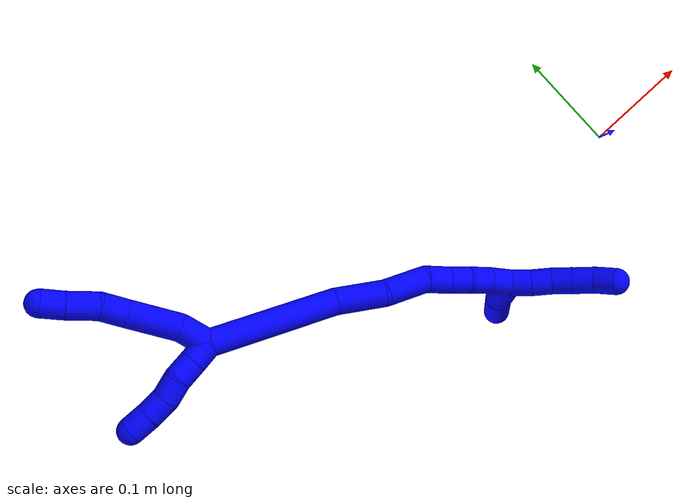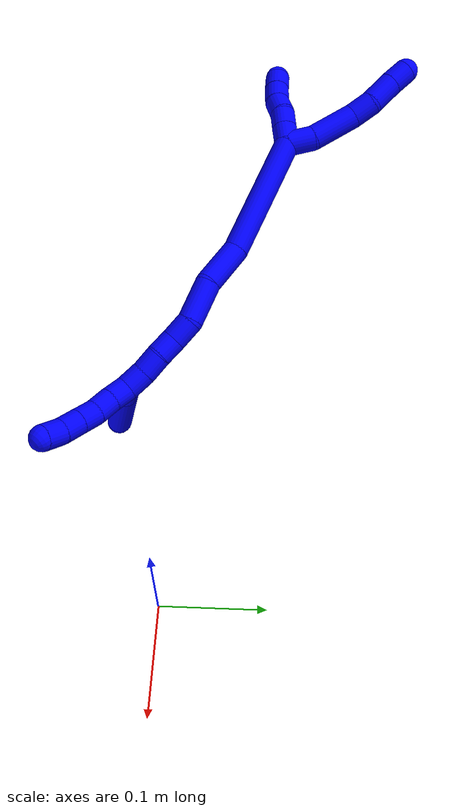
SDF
<sdf version="1.7">
 <world name="default">
  <model name="1">
   <static>0</static>
   <link name="1">
    <collision name="collision-cylinder-e_1_2_8">
     <pose>-0.008165 -0.000133 0.010962 0.012176 -0.640165 -0.004036</pose>
     <geometry><cylinder><radius>0.0125</radius><length>0.02734</length></cylinder></geometry>
     <surface>
      <friction><ode><mu>1.16</mu><mu2>1.16</mu2><slip1>0</slip1><slip2>0</slip2></ode></friction>
      <contact><ode><kp>1e+06</kp><kd>1</kd><max_vel>0</max_vel><min_depth>0.001</min_depth></ode></contact>
     </surface>
    </collision>
    <visual name="visual-cylinder-e_1_2_8">
     <pose>-0.008165 -0.000133 0.010962 0.012176 -0.640165 -0.004036</pose>
     <geometry><cylinder><radius>0.0125</radius><length>0.02734</length></cylinder></geometry>
     <material><ambient>0 0 1 1</ambient></material>
    </visual>
    <collision name="collision-cylinder-e_2_8_9">
     <pose>-0.025975 0.004066 0.043347 -0.199563 -0.415559 0.042206</pose>
     <geometry><cylinder><radius>0.0125</radius><length>0.047779</length></cylinder></geometry>
     <surface>
      <friction><ode><mu>1.16</mu><mu2>1.16</mu2><slip1>0</slip1><slip2>0</slip2></ode></friction>
      <contact><ode><kp>1e+06</kp><kd>1</kd><max_vel>0</max_vel><min_depth>0.001</min_depth></ode></contact>
     </surface>
    </collision>
    <visual name="visual-cylinder-e_2_8_9">
     <pose>-0.025975 0.004066 0.043347 -0.199563 -0.415559 0.042206</pose>
     <geometry><cylinder><radius>0.0125</radius><length>0.047779</length></cylinder></geometry>
     <material><ambient>0 0 1 1</ambient></material>
    </visual>
    <collision name="collision-cylinder-e_3_9_10">
     <pose>-0.041065 0.012587 0.074681 -0.399796 -0.468521 0.096624</pose>
     <geometry><cylinder><radius>0.0125</radius><length>0.02412</length></cylinder></geometry>
     <surface>
      <friction><ode><mu>1.16</mu><mu2>1.16</mu2><slip1>0</slip1><slip2>0</slip2></ode></friction>
      <contact><ode><kp>1e+06</kp><kd>1</kd><max_vel>0</max_vel><min_depth>0.001</min_depth></ode></contact>
     </surface>
    </collision>
    <visual name="visual-cylinder-e_3_9_10">
     <pose>-0.041065 0.012587 0.074681 -0.399796 -0.468521 0.096624</pose>
     <geometry><cylinder><radius>0.0125</radius><length>0.02412</length></cylinder></geometry>
     <material><ambient>0 0 1 1</ambient></material>
    </visual>
    <collision name="collision-cylinder-e_4_10_11">
     <pose>-0.049515 0.021856 0.098079 -0.360288 -0.205545 0.037561</pose>
     <geometry><cylinder><radius>0.0125</radius><length>0.029441</length></cylinder></geometry>
     <surface>
      <friction><ode><mu>1.16</mu><mu2>1.16</mu2><slip1>0</slip1><slip2>0</slip2></ode></friction>
      <contact><ode><kp>1e+06</kp><kd>1</kd><max_vel>0</max_vel><min_depth>0.001</min_depth></ode></contact>
     </surface>
    </collision>
    <visual name="visual-cylinder-e_4_10_11">
     <pose>-0.049515 0.021856 0.098079 -0.360288 -0.205545 0.037561</pose>
     <geometry><cylinder><radius>0.0125</radius><length>0.029441</length></cylinder></geometry>
     <material><ambient>0 0 1 1</ambient></material>
    </visual>
    <collision name="collision-cylinder-e_5_11_6">
     <pose>-0.055391 0.030282 0.12127 -0.331969 -0.272665 0.045955</pose>
     <geometry><cylinder><radius>0.0125</radius><length>0.02132</length></cylinder></geometry>
     <surface>
      <friction><ode><mu>1.16</mu><mu2>1.16</mu2><slip1>0</slip1><slip2>0</slip2></ode></friction>
      <contact><ode><kp>1e+06</kp><kd>1</kd><max_vel>0</max_vel><min_depth>0.001</min_depth></ode></contact>
     </surface>
    </collision>
    <visual name="visual-cylinder-e_5_11_6">
     <pose>-0.055391 0.030282 0.12127 -0.331969 -0.272665 0.045955</pose>
     <geometry><cylinder><radius>0.0125</radius><length>0.02132</length></cylinder></geometry>
     <material><ambient>0 0 1 1</ambient></material>
    </visual>
    <collision name="collision-cylinder-e_1_2_12">
     <pose>0.006266 0.003805 0.006801 -0.510161 0.677238 -0.183158</pose>
     <geometry><cylinder><radius>0.0125</radius><length>0.02</length></cylinder></geometry>
     <surface>
      <friction><ode><mu>1.16</mu><mu2>1.16</mu2><slip1>0</slip1><slip2>0</slip2></ode></friction>
      <contact><ode><kp>1e+06</kp><kd>1</kd><max_vel>0</max_vel><min_depth>0.001</min_depth></ode></contact>
     </surface>
    </collision>
    <visual name="visual-cylinder-e_1_2_12">
     <pose>0.006266 0.003805 0.006801 -0.510161 0.677238 -0.183158</pose>
     <geometry><cylinder><radius>0.0125</radius><length>0.02</length></cylinder></geometry>
     <material><ambient>0 0 1 1</ambient></material>
    </visual>
    <collision name="collision-cylinder-e_2_12_13">
     <pose>0.01857 0.011594 0.020508 -0.523094 0.648123 -0.179346</pose>
     <geometry><cylinder><radius>0.0125</radius><length>0.02</length></cylinder></geometry>
     <surface>
      <friction><ode><mu>1.16</mu><mu2>1.16</mu2><slip1>0</slip1><slip2>0</slip2></ode></friction>
      <contact><ode><kp>1e+06</kp><kd>1</kd><max_vel>0</max_vel><min_depth>0.001</min_depth></ode></contact>
     </surface>
    </collision>
    <visual name="visual-cylinder-e_2_12_13">
     <pose>0.01857 0.011594 0.020508 -0.523094 0.648123 -0.179346</pose>
     <geometry><cylinder><radius>0.0125</radius><length>0.02</length></cylinder></geometry>
     <material><ambient>0 0 1 1</ambient></material>
    </visual>
    <collision name="collision-cylinder-e_3_13_14">
     <pose>0.032335 0.017809 0.033354 -0.359532 0.883269 -0.171413</pose>
     <geometry><cylinder><radius>0.0125</radius><length>0.02</length></cylinder></geometry>
     <surface>
      <friction><ode><mu>1.16</mu><mu2>1.16</mu2><slip1>0</slip1><slip2>0</slip2></ode></friction>
      <contact><ode><kp>1e+06</kp><kd>1</kd><max_vel>0</max_vel><min_depth>0.001</min_depth></ode></contact>
     </surface>
    </collision>
    <visual name="visual-cylinder-e_3_13_14">
     <pose>0.032335 0.017809 0.033354 -0.359532 0.883269 -0.171413</pose>
     <geometry><cylinder><radius>0.0125</radius><length>0.02</length></cylinder></geometry>
     <material><ambient>0 0 1 1</ambient></material>
    </visual>
    <collision name="collision-cylinder-e_4_14_15">
     <pose>0.045948 0.022579 0.046972 -0.319208 0.629155 -0.10466</pose>
     <geometry><cylinder><radius>0.0125</radius><length>0.02</length></cylinder></geometry>
     <surface>
      <friction><ode><mu>1.16</mu><mu2>1.16</mu2><slip1>0</slip1><slip2>0</slip2></ode></friction>
      <contact><ode><kp>1e+06</kp><kd>1</kd><max_vel>0</max_vel><min_depth>0.001</min_depth></ode></contact>
     </surface>
    </collision>
    <visual name="visual-cylinder-e_4_14_15">
     <pose>0.045948 0.022579 0.046972 -0.319208 0.629155 -0.10466</pose>
     <geometry><cylinder><radius>0.0125</radius><length>0.02</length></cylinder></geometry>
     <material><ambient>0 0 1 1</ambient></material>
    </visual>
    <collision name="collision-cylinder-e_5_15_5">
     <pose>0.057237 0.027337 0.062763 -0.267123 0.57102 -0.078837</pose>
     <geometry><cylinder><radius>0.0125</radius><length>0.02</length></cylinder></geometry>
     <surface>
      <friction><ode><mu>1.16</mu><mu2>1.16</mu2><slip1>0</slip1><slip2>0</slip2></ode></friction>
      <contact><ode><kp>1e+06</kp><kd>1</kd><max_vel>0</max_vel><min_depth>0.001</min_depth></ode></contact>
     </surface>
    </collision>
    <visual name="visual-cylinder-e_5_15_5">
     <pose>0.057237 0.027337 0.062763 -0.267123 0.57102 -0.078837</pose>
     <geometry><cylinder><radius>0.0125</radius><length>0.02</length></cylinder></geometry>
     <material><ambient>0 0 1 1</ambient></material>
    </visual>
    <collision name="collision-cylinder-e_1_2_16">
     <pose>-0.005027 -0.031028 -0.053499 2.61602 -0.081112 -0.299435</pose>
     <geometry><cylinder><radius>0.0125</radius><length>0.124099</length></cylinder></geometry>
     <surface>
      <friction><ode><mu>1.16</mu><mu2>1.16</mu2><slip1>0</slip1><slip2>0</slip2></ode></friction>
      <contact><ode><kp>1e+06</kp><kd>1</kd><max_vel>0</max_vel><min_depth>0.001</min_depth></ode></contact>
     </surface>
    </collision>
    <visual name="visual-cylinder-e_1_2_16">
     <pose>-0.005027 -0.031028 -0.053499 2.61602 -0.081112 -0.299435</pose>
     <geometry><cylinder><radius>0.0125</radius><length>0.124099</length></cylinder></geometry>
     <material><ambient>0 0 1 1</ambient></material>
    </visual>
    <collision name="collision-cylinder-e_2_16_17">
     <pose>-0.010328 -0.067525 -0.12942 2.90236 -0.01184 -0.098436</pose>
     <geometry><cylinder><radius>0.0125</radius><length>0.046162</length></cylinder></geometry>
     <surface>
      <friction><ode><mu>1.16</mu><mu2>1.16</mu2><slip1>0</slip1><slip2>0</slip2></ode></friction>
      <contact><ode><kp>1e+06</kp><kd>1</kd><max_vel>0</max_vel><min_depth>0.001</min_depth></ode></contact>
     </surface>
    </collision>
    <visual name="visual-cylinder-e_2_16_17">
     <pose>-0.010328 -0.067525 -0.12942 2.90236 -0.01184 -0.098436</pose>
     <geometry><cylinder><radius>0.0125</radius><length>0.046162</length></cylinder></geometry>
     <material><ambient>0 0 1 1</ambient></material>
    </visual>
    <collision name="collision-cylinder-e_3_17_18">
     <pose>-0.012603 -0.08352 -0.169937 2.61474 -0.095317 -0.350071</pose>
     <geometry><cylinder><radius>0.0125</radius><length>0.042058</length></cylinder></geometry>
     <surface>
      <friction><ode><mu>1.16</mu><mu2>1.16</mu2><slip1>0</slip1><slip2>0</slip2></ode></friction>
      <contact><ode><kp>1e+06</kp><kd>1</kd><max_vel>0</max_vel><min_depth>0.001</min_depth></ode></contact>
     </surface>
    </collision>
    <visual name="visual-cylinder-e_3_17_18">
     <pose>-0.012603 -0.08352 -0.169937 2.61474 -0.095317 -0.350071</pose>
     <geometry><cylinder><radius>0.0125</radius><length>0.042058</length></cylinder></geometry>
     <material><ambient>0 0 1 1</ambient></material>
    </visual>
    <collision name="collision-cylinder-e_4_18_19">
     <pose>-0.011765 -0.099534 -0.198106 2.64281 0.242655 0.892946</pose>
     <geometry><cylinder><radius>0.0125</radius><length>0.023637</length></cylinder></geometry>
     <surface>
      <friction><ode><mu>1.16</mu><mu2>1.16</mu2><slip1>0</slip1><slip2>0</slip2></ode></friction>
      <contact><ode><kp>1e+06</kp><kd>1</kd><max_vel>0</max_vel><min_depth>0.001</min_depth></ode></contact>
     </surface>
    </collision>
    <visual name="visual-cylinder-e_4_18_19">
     <pose>-0.011765 -0.099534 -0.198106 2.64281 0.242655 0.892946</pose>
     <geometry><cylinder><radius>0.0125</radius><length>0.023637</length></cylinder></geometry>
     <material><ambient>0 0 1 1</ambient></material>
    </visual>
    <collision name="collision-cylinder-e_5_19_20">
     <pose>-0.007116 -0.108549 -0.217754 2.78858 0.175472 0.916328</pose>
     <geometry><cylinder><radius>0.0125</radius><length>0.020722</length></cylinder></geometry>
     <surface>
      <friction><ode><mu>1.16</mu><mu2>1.16</mu2><slip1>0</slip1><slip2>0</slip2></ode></friction>
      <contact><ode><kp>1e+06</kp><kd>1</kd><max_vel>0</max_vel><min_depth>0.001</min_depth></ode></contact>
     </surface>
    </collision>
    <visual name="visual-cylinder-e_5_19_20">
     <pose>-0.007116 -0.108549 -0.217754 2.78858 0.175472 0.916328</pose>
     <geometry><cylinder><radius>0.0125</radius><length>0.020722</length></cylinder></geometry>
     <material><ambient>0 0 1 1</ambient></material>
    </visual>
    <collision name="collision-cylinder-e_6_20_21">
     <pose>-0.002862 -0.117209 -0.236367 2.62516 0.231019 0.827847</pose>
     <geometry><cylinder><radius>0.0125</radius><length>0.021359</length></cylinder></geometry>
     <surface>
      <friction><ode><mu>1.16</mu><mu2>1.16</mu2><slip1>0</slip1><slip2>0</slip2></ode></friction>
      <contact><ode><kp>1e+06</kp><kd>1</kd><max_vel>0</max_vel><min_depth>0.001</min_depth></ode></contact>
     </surface>
    </collision>
    <visual name="visual-cylinder-e_6_20_21">
     <pose>-0.002862 -0.117209 -0.236367 2.62516 0.231019 0.827847</pose>
     <geometry><cylinder><radius>0.0125</radius><length>0.021359</length></cylinder></geometry>
     <material><ambient>0 0 1 1</ambient></material>
    </visual>
    <collision name="collision-cylinder-e_7_21_1">
     <pose>0.002671 -0.126232 -0.255201 2.76355 0.285 1.28696</pose>
     <geometry><cylinder><radius>0.0125</radius><length>0.021962</length></cylinder></geometry>
     <surface>
      <friction><ode><mu>1.16</mu><mu2>1.16</mu2><slip1>0</slip1><slip2>0</slip2></ode></friction>
      <contact><ode><kp>1e+06</kp><kd>1</kd><max_vel>0</max_vel><min_depth>0.001</min_depth></ode></contact>
     </surface>
    </collision>
    <visual name="visual-cylinder-e_7_21_1">
     <pose>0.002671 -0.126232 -0.255201 2.76355 0.285 1.28696</pose>
     <geometry><cylinder><radius>0.0125</radius><length>0.021962</length></cylinder></geometry>
     <material><ambient>0 0 1 1</ambient></material>
    </visual>
    <collision name="collision-cylinder-e_1_1_22">
     <pose>0.016511 -0.143966 -0.259169 1.17249 0.621311 0.420148</pose>
     <geometry><cylinder><radius>0.0125</radius><length>0.036945</length></cylinder></geometry>
     <surface>
      <friction><ode><mu>1.16</mu><mu2>1.16</mu2><slip1>0</slip1><slip2>0</slip2></ode></friction>
      <contact><ode><kp>1e+06</kp><kd>1</kd><max_vel>0</max_vel><min_depth>0.001</min_depth></ode></contact>
     </surface>
    </collision>
    <visual name="visual-cylinder-e_1_1_22">
     <pose>0.016511 -0.143966 -0.259169 1.17249 0.621311 0.420148</pose>
     <geometry><cylinder><radius>0.0125</radius><length>0.036945</length></cylinder></geometry>
     <material><ambient>0 0 1 1</ambient></material>
    </visual>
    <collision name="collision-cylinder-e_2_22_4">
     <pose>0.041719 -0.185784 -0.251747 1.51379 0.476286 0.45079</pose>
     <geometry><cylinder><radius>0.0125</radius><length>0.063055</length></cylinder></geometry>
     <surface>
      <friction><ode><mu>1.16</mu><mu2>1.16</mu2><slip1>0</slip1><slip2>0</slip2></ode></friction>
      <contact><ode><kp>1e+06</kp><kd>1</kd><max_vel>0</max_vel><min_depth>0.001</min_depth></ode></contact>
     </surface>
    </collision>
    <visual name="visual-cylinder-e_2_22_4">
     <pose>0.041719 -0.185784 -0.251747 1.51379 0.476286 0.45079</pose>
     <geometry><cylinder><radius>0.0125</radius><length>0.063055</length></cylinder></geometry>
     <material><ambient>0 0 1 1</ambient></material>
    </visual>
    <collision name="collision-cylinder-e_1_1_23">
     <pose>0.006789 -0.130184 -0.274941 3.13538 0.1033 3.02151</pose>
     <geometry><cylinder><radius>0.0125</radius><length>0.02</length></cylinder></geometry>
     <surface>
      <friction><ode><mu>1.16</mu><mu2>1.16</mu2><slip1>0</slip1><slip2>0</slip2></ode></friction>
      <contact><ode><kp>1e+06</kp><kd>1</kd><max_vel>0</max_vel><min_depth>0.001</min_depth></ode></contact>
     </surface>
    </collision>
    <visual name="visual-cylinder-e_1_1_23">
     <pose>0.006789 -0.130184 -0.274941 3.13538 0.1033 3.02151</pose>
     <geometry><cylinder><radius>0.0125</radius><length>0.02</length></cylinder></geometry>
     <material><ambient>0 0 1 1</ambient></material>
    </visual>
    <collision name="collision-cylinder-e_2_23_24">
     <pose>0.007911 -0.130311 -0.294887 3.13506 0.009084 1.89507</pose>
     <geometry><cylinder><radius>0.0125</radius><length>0.02</length></cylinder></geometry>
     <surface>
      <friction><ode><mu>1.16</mu><mu2>1.16</mu2><slip1>0</slip1><slip2>0</slip2></ode></friction>
      <contact><ode><kp>1e+06</kp><kd>1</kd><max_vel>0</max_vel><min_depth>0.001</min_depth></ode></contact>
     </surface>
    </collision>
    <visual name="visual-cylinder-e_2_23_24">
     <pose>0.007911 -0.130311 -0.294887 3.13506 0.009084 1.89507</pose>
     <geometry><cylinder><radius>0.0125</radius><length>0.02</length></cylinder></geometry>
     <material><ambient>0 0 1 1</ambient></material>
    </visual>
    <collision name="collision-cylinder-e_3_24_25">
     <pose>0.008295 -0.128399 -0.314685 -2.94246 0.029329 -0.291539</pose>
     <geometry><cylinder><radius>0.0125</radius><length>0.02</length></cylinder></geometry>
     <surface>
      <friction><ode><mu>1.16</mu><mu2>1.16</mu2><slip1>0</slip1><slip2>0</slip2></ode></friction>
      <contact><ode><kp>1e+06</kp><kd>1</kd><max_vel>0</max_vel><min_depth>0.001</min_depth></ode></contact>
     </surface>
    </collision>
    <visual name="visual-cylinder-e_3_24_25">
     <pose>0.008295 -0.128399 -0.314685 -2.94246 0.029329 -0.291539</pose>
     <geometry><cylinder><radius>0.0125</radius><length>0.02</length></cylinder></geometry>
     <material><ambient>0 0 1 1</ambient></material>
    </visual>
    <collision name="collision-cylinder-e_4_25_26">
     <pose>0.008721 -0.124391 -0.334274 -2.93714 0.013279 -0.129272</pose>
     <geometry><cylinder><radius>0.0125</radius><length>0.02</length></cylinder></geometry>
     <surface>
      <friction><ode><mu>1.16</mu><mu2>1.16</mu2><slip1>0</slip1><slip2>0</slip2></ode></friction>
      <contact><ode><kp>1e+06</kp><kd>1</kd><max_vel>0</max_vel><min_depth>0.001</min_depth></ode></contact>
     </surface>
    </collision>
    <visual name="visual-cylinder-e_4_25_26">
     <pose>0.008721 -0.124391 -0.334274 -2.93714 0.013279 -0.129272</pose>
     <geometry><cylinder><radius>0.0125</radius><length>0.02</length></cylinder></geometry>
     <material><ambient>0 0 1 1</ambient></material>
    </visual>
    <collision name="collision-cylinder-e_5_26_3">
     <pose>0.009501 -0.118753 -0.353368 -2.77159 0.064677 -0.342344</pose>
     <geometry><cylinder><radius>0.0125</radius><length>0.02</length></cylinder></geometry>
     <surface>
      <friction><ode><mu>1.16</mu><mu2>1.16</mu2><slip1>0</slip1><slip2>0</slip2></ode></friction>
      <contact><ode><kp>1e+06</kp><kd>1</kd><max_vel>0</max_vel><min_depth>0.001</min_depth></ode></contact>
     </surface>
    </collision>
    <visual name="visual-cylinder-e_5_26_3">
     <pose>0.009501 -0.118753 -0.353368 -2.77159 0.064677 -0.342344</pose>
     <geometry><cylinder><radius>0.0125</radius><length>0.02</length></cylinder></geometry>
     <material><ambient>0 0 1 1</ambient></material>
    </visual>
    <collision name="collision-sphere-3">
     <pose>0.010147 -0.115144 -0.362672 0 -0 0</pose>
     <geometry><sphere><radius>0.0125</radius></sphere></geometry>
     <surface>
      <friction><ode><mu>1.16</mu><mu2>1.16</mu2><slip1>0</slip1><slip2>0</slip2></ode></friction>
      <contact><ode><kp>1e+06</kp><kd>1</kd><max_vel>0</max_vel><min_depth>0.001</min_depth></ode></contact>
     </surface>
    </collision>
    <visual name="visual-sphere-3">
     <pose>0.010147 -0.115144 -0.362672 0 -0 0</pose>
     <geometry><sphere><radius>0.0125</radius></sphere></geometry>
     <material><ambient>0 0 1 1</ambient></material>
    </visual>
    <collision name="collision-sphere-26">
     <pose>0.008854 -0.122361 -0.344064 0 -0 0</pose>
     <geometry><sphere><radius>0.0125</radius></sphere></geometry>
     <surface>
      <friction><ode><mu>1.16</mu><mu2>1.16</mu2><slip1>0</slip1><slip2>0</slip2></ode></friction>
      <contact><ode><kp>1e+06</kp><kd>1</kd><max_vel>0</max_vel><min_depth>0.001</min_depth></ode></contact>
     </surface>
    </collision>
    <visual name="visual-sphere-26">
     <pose>0.008854 -0.122361 -0.344064 0 -0 0</pose>
     <geometry><sphere><radius>0.0125</radius></sphere></geometry>
     <material><ambient>0 0 1 1</ambient></material>
    </visual>
    <collision name="collision-sphere-25">
     <pose>0.008589 -0.126421 -0.324483 0 -0 0</pose>
     <geometry><sphere><radius>0.0125</radius></sphere></geometry>
     <surface>
      <friction><ode><mu>1.16</mu><mu2>1.16</mu2><slip1>0</slip1><slip2>0</slip2></ode></friction>
      <contact><ode><kp>1e+06</kp><kd>1</kd><max_vel>0</max_vel><min_depth>0.001</min_depth></ode></contact>
     </surface>
    </collision>
    <visual name="visual-sphere-25">
     <pose>0.008589 -0.126421 -0.324483 0 -0 0</pose>
     <geometry><sphere><radius>0.0125</radius></sphere></geometry>
     <material><ambient>0 0 1 1</ambient></material>
    </visual>
    <collision name="collision-sphere-24">
     <pose>0.008002 -0.130376 -0.304886 0 -0 0</pose>
     <geometry><sphere><radius>0.0125</radius></sphere></geometry>
     <surface>
      <friction><ode><mu>1.16</mu><mu2>1.16</mu2><slip1>0</slip1><slip2>0</slip2></ode></friction>
      <contact><ode><kp>1e+06</kp><kd>1</kd><max_vel>0</max_vel><min_depth>0.001</min_depth></ode></contact>
     </surface>
    </collision>
    <visual name="visual-sphere-24">
     <pose>0.008002 -0.130376 -0.304886 0 -0 0</pose>
     <geometry><sphere><radius>0.0125</radius></sphere></geometry>
     <material><ambient>0 0 1 1</ambient></material>
    </visual>
    <collision name="collision-sphere-23">
     <pose>0.00782 -0.130245 -0.284888 0 -0 0</pose>
     <geometry><sphere><radius>0.0125</radius></sphere></geometry>
     <surface>
      <friction><ode><mu>1.16</mu><mu2>1.16</mu2><slip1>0</slip1><slip2>0</slip2></ode></friction>
      <contact><ode><kp>1e+06</kp><kd>1</kd><max_vel>0</max_vel><min_depth>0.001</min_depth></ode></contact>
     </surface>
    </collision>
    <visual name="visual-sphere-23">
     <pose>0.00782 -0.130245 -0.284888 0 -0 0</pose>
     <geometry><sphere><radius>0.0125</radius></sphere></geometry>
     <material><ambient>0 0 1 1</ambient></material>
    </visual>
    <collision name="collision-sphere-4">
     <pose>0.056173 -0.213757 -0.25015 0 -0 0</pose>
     <geometry><sphere><radius>0.0125</radius></sphere></geometry>
     <surface>
      <friction><ode><mu>1.16</mu><mu2>1.16</mu2><slip1>0</slip1><slip2>0</slip2></ode></friction>
      <contact><ode><kp>1e+06</kp><kd>1</kd><max_vel>0</max_vel><min_depth>0.001</min_depth></ode></contact>
     </surface>
    </collision>
    <visual name="visual-sphere-4">
     <pose>0.056173 -0.213757 -0.25015 0 -0 0</pose>
     <geometry><sphere><radius>0.0125</radius></sphere></geometry>
     <material><ambient>0 0 1 1</ambient></material>
    </visual>
    <collision name="collision-sphere-22">
     <pose>0.027264 -0.157811 -0.253343 0 -0 0</pose>
     <geometry><sphere><radius>0.0125</radius></sphere></geometry>
     <surface>
      <friction><ode><mu>1.16</mu><mu2>1.16</mu2><slip1>0</slip1><slip2>0</slip2></ode></friction>
      <contact><ode><kp>1e+06</kp><kd>1</kd><max_vel>0</max_vel><min_depth>0.001</min_depth></ode></contact>
     </surface>
    </collision>
    <visual name="visual-sphere-22">
     <pose>0.027264 -0.157811 -0.253343 0 -0 0</pose>
     <geometry><sphere><radius>0.0125</radius></sphere></geometry>
     <material><ambient>0 0 1 1</ambient></material>
    </visual>
    <collision name="collision-sphere-1">
     <pose>0.005758 -0.130122 -0.264995 0 -0 0</pose>
     <geometry><sphere><radius>0.0125</radius></sphere></geometry>
     <surface>
      <friction><ode><mu>1.16</mu><mu2>1.16</mu2><slip1>0</slip1><slip2>0</slip2></ode></friction>
      <contact><ode><kp>1e+06</kp><kd>1</kd><max_vel>0</max_vel><min_depth>0.001</min_depth></ode></contact>
     </surface>
    </collision>
    <visual name="visual-sphere-1">
     <pose>0.005758 -0.130122 -0.264995 0 -0 0</pose>
     <geometry><sphere><radius>0.0125</radius></sphere></geometry>
     <material><ambient>0 0 1 1</ambient></material>
    </visual>
    <collision name="collision-sphere-21">
     <pose>-0.000417 -0.122343 -0.245407 0 -0 0</pose>
     <geometry><sphere><radius>0.0125</radius></sphere></geometry>
     <surface>
      <friction><ode><mu>1.16</mu><mu2>1.16</mu2><slip1>0</slip1><slip2>0</slip2></ode></friction>
      <contact><ode><kp>1e+06</kp><kd>1</kd><max_vel>0</max_vel><min_depth>0.001</min_depth></ode></contact>
     </surface>
    </collision>
    <visual name="visual-sphere-21">
     <pose>-0.000417 -0.122343 -0.245407 0 -0 0</pose>
     <geometry><sphere><radius>0.0125</radius></sphere></geometry>
     <material><ambient>0 0 1 1</ambient></material>
    </visual>
    <collision name="collision-sphere-6">
     <pose>-0.058261 0.033628 0.130976 0 -0 0</pose>
     <geometry><sphere><radius>0.0125</radius></sphere></geometry>
     <surface>
      <friction><ode><mu>1.16</mu><mu2>1.16</mu2><slip1>0</slip1><slip2>0</slip2></ode></friction>
      <contact><ode><kp>1e+06</kp><kd>1</kd><max_vel>0</max_vel><min_depth>0.001</min_depth></ode></contact>
     </surface>
    </collision>
    <visual name="visual-sphere-6">
     <pose>-0.058261 0.033628 0.130976 0 -0 0</pose>
     <geometry><sphere><radius>0.0125</radius></sphere></geometry>
     <material><ambient>0 0 1 1</ambient></material>
    </visual>
    <collision name="collision-sphere-11">
     <pose>-0.05252 0.026936 0.111564 0 -0 0</pose>
     <geometry><sphere><radius>0.0125</radius></sphere></geometry>
     <surface>
      <friction><ode><mu>1.16</mu><mu2>1.16</mu2><slip1>0</slip1><slip2>0</slip2></ode></friction>
      <contact><ode><kp>1e+06</kp><kd>1</kd><max_vel>0</max_vel><min_depth>0.001</min_depth></ode></contact>
     </surface>
    </collision>
    <visual name="visual-sphere-11">
     <pose>-0.05252 0.026936 0.111564 0 -0 0</pose>
     <geometry><sphere><radius>0.0125</radius></sphere></geometry>
     <material><ambient>0 0 1 1</ambient></material>
    </visual>
    <collision name="collision-sphere-10">
     <pose>-0.046511 0.016775 0.084593 0 -0 0</pose>
     <geometry><sphere><radius>0.0125</radius></sphere></geometry>
     <surface>
      <friction><ode><mu>1.16</mu><mu2>1.16</mu2><slip1>0</slip1><slip2>0</slip2></ode></friction>
      <contact><ode><kp>1e+06</kp><kd>1</kd><max_vel>0</max_vel><min_depth>0.001</min_depth></ode></contact>
     </surface>
    </collision>
    <visual name="visual-sphere-10">
     <pose>-0.046511 0.016775 0.084593 0 -0 0</pose>
     <geometry><sphere><radius>0.0125</radius></sphere></geometry>
     <material><ambient>0 0 1 1</ambient></material>
    </visual>
    <collision name="collision-sphere-9">
     <pose>-0.035619 0.008399 0.06477 0 -0 0</pose>
     <geometry><sphere><radius>0.0125</radius></sphere></geometry>
     <surface>
      <friction><ode><mu>1.16</mu><mu2>1.16</mu2><slip1>0</slip1><slip2>0</slip2></ode></friction>
      <contact><ode><kp>1e+06</kp><kd>1</kd><max_vel>0</max_vel><min_depth>0.001</min_depth></ode></contact>
     </surface>
    </collision>
    <visual name="visual-sphere-9">
     <pose>-0.035619 0.008399 0.06477 0 -0 0</pose>
     <geometry><sphere><radius>0.0125</radius></sphere></geometry>
     <material><ambient>0 0 1 1</ambient></material>
    </visual>
    <collision name="collision-sphere-2">
     <geometry><sphere><radius>0.0125</radius></sphere></geometry>
     <surface>
      <friction><ode><mu>1.16</mu><mu2>1.16</mu2><slip1>0</slip1><slip2>0</slip2></ode></friction>
      <contact><ode><kp>1e+06</kp><kd>1</kd><max_vel>0</max_vel><min_depth>0.001</min_depth></ode></contact>
     </surface>
    </collision>
    <visual name="visual-sphere-2">
     <geometry><sphere><radius>0.0125</radius></sphere></geometry>
     <material><ambient>0 0 1 1</ambient></material>
    </visual>
    <collision name="collision-sphere-19">
     <pose>-0.008925 -0.105022 -0.208181 0 -0 0</pose>
     <geometry><sphere><radius>0.0125</radius></sphere></geometry>
     <surface>
      <friction><ode><mu>1.16</mu><mu2>1.16</mu2><slip1>0</slip1><slip2>0</slip2></ode></friction>
      <contact><ode><kp>1e+06</kp><kd>1</kd><max_vel>0</max_vel><min_depth>0.001</min_depth></ode></contact>
     </surface>
    </collision>
    <visual name="visual-sphere-19">
     <pose>-0.008925 -0.105022 -0.208181 0 -0 0</pose>
     <geometry><sphere><radius>0.0125</radius></sphere></geometry>
     <material><ambient>0 0 1 1</ambient></material>
    </visual>
    <collision name="collision-sphere-8">
     <pose>-0.016331 -0.000267 0.021925 0 -0 0</pose>
     <geometry><sphere><radius>0.0125</radius></sphere></geometry>
     <surface>
      <friction><ode><mu>1.16</mu><mu2>1.16</mu2><slip1>0</slip1><slip2>0</slip2></ode></friction>
      <contact><ode><kp>1e+06</kp><kd>1</kd><max_vel>0</max_vel><min_depth>0.001</min_depth></ode></contact>
     </surface>
    </collision>
    <visual name="visual-sphere-8">
     <pose>-0.016331 -0.000267 0.021925 0 -0 0</pose>
     <geometry><sphere><radius>0.0125</radius></sphere></geometry>
     <material><ambient>0 0 1 1</ambient></material>
    </visual>
    <collision name="collision-sphere-12">
     <pose>0.012533 0.007611 0.013601 0 -0 0</pose>
     <geometry><sphere><radius>0.0125</radius></sphere></geometry>
     <surface>
      <friction><ode><mu>1.16</mu><mu2>1.16</mu2><slip1>0</slip1><slip2>0</slip2></ode></friction>
      <contact><ode><kp>1e+06</kp><kd>1</kd><max_vel>0</max_vel><min_depth>0.001</min_depth></ode></contact>
     </surface>
    </collision>
    <visual name="visual-sphere-12">
     <pose>0.012533 0.007611 0.013601 0 -0 0</pose>
     <geometry><sphere><radius>0.0125</radius></sphere></geometry>
     <material><ambient>0 0 1 1</ambient></material>
    </visual>
    <collision name="collision-sphere-13">
     <pose>0.024607 0.015576 0.027414 0 -0 0</pose>
     <geometry><sphere><radius>0.0125</radius></sphere></geometry>
     <surface>
      <friction><ode><mu>1.16</mu><mu2>1.16</mu2><slip1>0</slip1><slip2>0</slip2></ode></friction>
      <contact><ode><kp>1e+06</kp><kd>1</kd><max_vel>0</max_vel><min_depth>0.001</min_depth></ode></contact>
     </surface>
    </collision>
    <visual name="visual-sphere-13">
     <pose>0.024607 0.015576 0.027414 0 -0 0</pose>
     <geometry><sphere><radius>0.0125</radius></sphere></geometry>
     <material><ambient>0 0 1 1</ambient></material>
    </visual>
    <collision name="collision-sphere-14">
     <pose>0.040063 0.020042 0.039295 0 -0 0</pose>
     <geometry><sphere><radius>0.0125</radius></sphere></geometry>
     <surface>
      <friction><ode><mu>1.16</mu><mu2>1.16</mu2><slip1>0</slip1><slip2>0</slip2></ode></friction>
      <contact><ode><kp>1e+06</kp><kd>1</kd><max_vel>0</max_vel><min_depth>0.001</min_depth></ode></contact>
     </surface>
    </collision>
    <visual name="visual-sphere-14">
     <pose>0.040063 0.020042 0.039295 0 -0 0</pose>
     <geometry><sphere><radius>0.0125</radius></sphere></geometry>
     <material><ambient>0 0 1 1</ambient></material>
    </visual>
    <collision name="collision-sphere-15">
     <pose>0.051832 0.025116 0.054648 0 -0 0</pose>
     <geometry><sphere><radius>0.0125</radius></sphere></geometry>
     <surface>
      <friction><ode><mu>1.16</mu><mu2>1.16</mu2><slip1>0</slip1><slip2>0</slip2></ode></friction>
      <contact><ode><kp>1e+06</kp><kd>1</kd><max_vel>0</max_vel><min_depth>0.001</min_depth></ode></contact>
     </surface>
    </collision>
    <visual name="visual-sphere-15">
     <pose>0.051832 0.025116 0.054648 0 -0 0</pose>
     <geometry><sphere><radius>0.0125</radius></sphere></geometry>
     <material><ambient>0 0 1 1</ambient></material>
    </visual>
    <collision name="collision-sphere-5">
     <pose>0.062642 0.029558 0.070879 0 -0 0</pose>
     <geometry><sphere><radius>0.0125</radius></sphere></geometry>
     <surface>
      <friction><ode><mu>1.16</mu><mu2>1.16</mu2><slip1>0</slip1><slip2>0</slip2></ode></friction>
      <contact><ode><kp>1e+06</kp><kd>1</kd><max_vel>0</max_vel><min_depth>0.001</min_depth></ode></contact>
     </surface>
    </collision>
    <visual name="visual-sphere-5">
     <pose>0.062642 0.029558 0.070879 0 -0 0</pose>
     <geometry><sphere><radius>0.0125</radius></sphere></geometry>
     <material><ambient>0 0 1 1</ambient></material>
    </visual>
    <collision name="collision-sphere-16">
     <pose>-0.010055 -0.062057 -0.106998 0 -0 0</pose>
     <geometry><sphere><radius>0.0125</radius></sphere></geometry>
     <surface>
      <friction><ode><mu>1.16</mu><mu2>1.16</mu2><slip1>0</slip1><slip2>0</slip2></ode></friction>
      <contact><ode><kp>1e+06</kp><kd>1</kd><max_vel>0</max_vel><min_depth>0.001</min_depth></ode></contact>
     </surface>
    </collision>
    <visual name="visual-sphere-16">
     <pose>-0.010055 -0.062057 -0.106998 0 -0 0</pose>
     <geometry><sphere><radius>0.0125</radius></sphere></geometry>
     <material><ambient>0 0 1 1</ambient></material>
    </visual>
    <collision name="collision-sphere-17">
     <pose>-0.010602 -0.072994 -0.151842 0 -0 0</pose>
     <geometry><sphere><radius>0.0125</radius></sphere></geometry>
     <surface>
      <friction><ode><mu>1.16</mu><mu2>1.16</mu2><slip1>0</slip1><slip2>0</slip2></ode></friction>
      <contact><ode><kp>1e+06</kp><kd>1</kd><max_vel>0</max_vel><min_depth>0.001</min_depth></ode></contact>
     </surface>
    </collision>
    <visual name="visual-sphere-17">
     <pose>-0.010602 -0.072994 -0.151842 0 -0 0</pose>
     <geometry><sphere><radius>0.0125</radius></sphere></geometry>
     <material><ambient>0 0 1 1</ambient></material>
    </visual>
    <collision name="collision-sphere-18">
     <pose>-0.014604 -0.094046 -0.188032 0 -0 0</pose>
     <geometry><sphere><radius>0.0125</radius></sphere></geometry>
     <surface>
      <friction><ode><mu>1.16</mu><mu2>1.16</mu2><slip1>0</slip1><slip2>0</slip2></ode></friction>
      <contact><ode><kp>1e+06</kp><kd>1</kd><max_vel>0</max_vel><min_depth>0.001</min_depth></ode></contact>
     </surface>
    </collision>
    <visual name="visual-sphere-18">
     <pose>-0.014604 -0.094046 -0.188032 0 -0 0</pose>
     <geometry><sphere><radius>0.0125</radius></sphere></geometry>
     <material><ambient>0 0 1 1</ambient></material>
    </visual>
    <collision name="collision-sphere-20">
     <pose>-0.005307 -0.112076 -0.227326 0 -0 0</pose>
     <geometry><sphere><radius>0.0125</radius></sphere></geometry>
     <surface>
      <friction><ode><mu>1.16</mu><mu2>1.16</mu2><slip1>0</slip1><slip2>0</slip2></ode></friction>
      <contact><ode><kp>1e+06</kp><kd>1</kd><max_vel>0</max_vel><min_depth>0.001</min_depth></ode></contact>
     </surface>
    </collision>
    <visual name="visual-sphere-20">
     <pose>-0.005307 -0.112076 -0.227326 0 -0 0</pose>
     <geometry><sphere><radius>0.0125</radius></sphere></geometry>
     <material><ambient>0 0 1 1</ambient></material>
    </visual>
    <inertial>
     <pose>0.00016 -0.062116 -0.111264 0 -0 0</pose>
     <mass>0.75</mass>
     <inertia>
      <ixx>0.000197</ixx>
      <ixy>0</ixy>
      <ixz>0</ixz>
      <iyy>-0.000164</iyy>
      <iyz>0</iyz>
      <izz>9.9e-05</izz>
     </inertia>
    </inertial>
   </link>
   <pose>-0.402537 0.107735 0.214662 1.64345 0.219203 -2.20025</pose>
  </model>
 </world>
</sdf>
